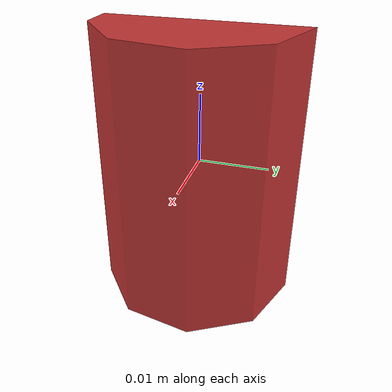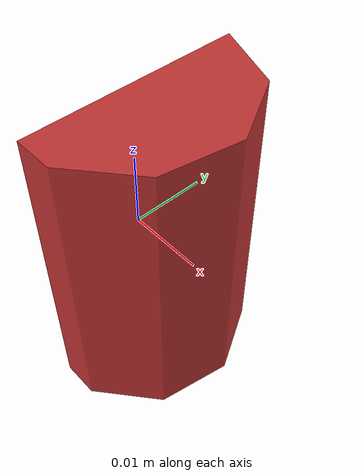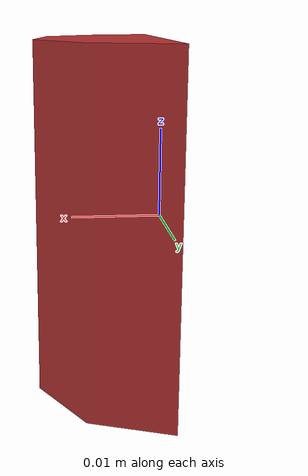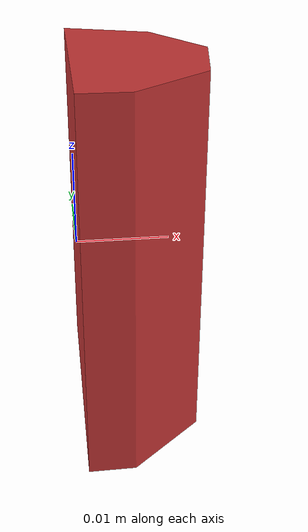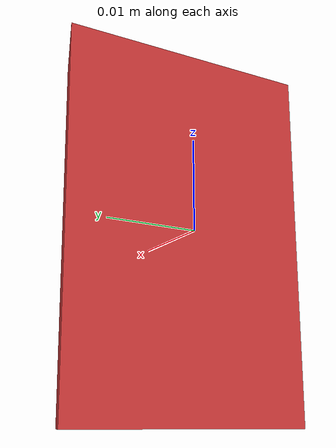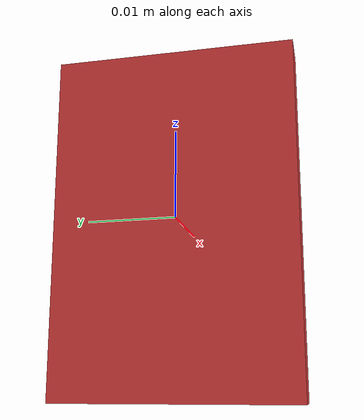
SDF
<?xml version="1.0" ?>
<sdf version='1.6'>
  <model name='cyl_7'>
    <link name='cyl_7'>
      <pose frame=''>0 0 0 0 0 0</pose>
      <inertial>
        <pose frame=''>0.005834 0.000000 0.000000 0. 0. 0.</pose>
        <mass>1.17888372785e-05</mass>
        <inertia>
          <ixx>2.10978573707e-09</ixx>
          <ixy>-9.52262314196e-13</ixy>
          <ixz>3.67028833682e-27</ixz>
          <iyy>1.70855900087e-09</iyy>
          <iyz>1.3784407469e-26</iyz>
          <izz>7.13078305561e-10</izz>
        </inertia>
      </inertial>
      <visual>
        <pose frame=''>0 0 0 0 0 0</pose>
        <geometry>
          <mesh>
            <scale>1 1 1</scale>
            <uri>models/half_carrot_models/meshes/cyl_7.obj</uri>
          </mesh>
        </geometry>
        <material>
          <ambient>0.75 0.2 0.2 1.0</ambient>
          <diffuse>0.75 0.2 0.2 1.0</diffuse>
          <specular>0.01 0.01 0.01 1</specular>
          <emissive>0 0 0 1</emissive>
          <shader type='vertex'>
            <normal_map>__default__</normal_map>
          </shader>
        </material>
      </visual>
      <collision>
        <pose frame=''>0 0 0 0 0 0</pose>
        <geometry>
          <mesh>
            <scale>1 1 1</scale>
            <uri>models/half_carrot_models/meshes/cyl_7.obj</uri>
          </mesh>
        </geometry>
      </collision>
      <gravity>1</gravity>
      <self_collide>0</self_collide>
    </link>
  </model>
</sdf>
